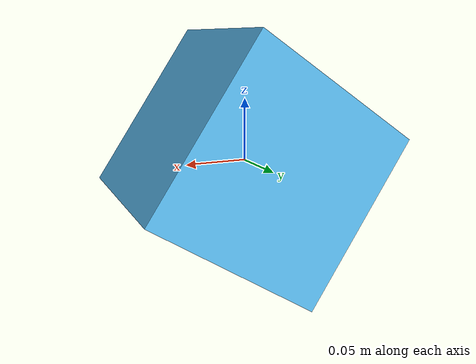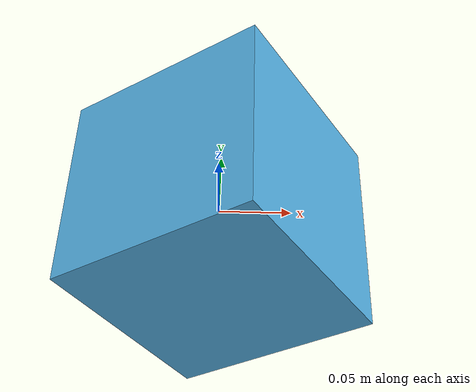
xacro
<robot name="camera5">
    <link name="world"/>
    <joint name="world_joint" type="fixed">
        <origin xyz="0.0 0 0" rpy="0 0.58535 3.14"/>
        <parent link="world"/>
        <child link="cctv5"/>
    </joint>
    <link name="cctv5">
        <visual>
            <origin xyz="0 0 0" rpy="0 0 0"/>
            <geometry>
                <box size="0.15 0.15 0.15"/>
            </geometry>
        </visual>
        <inertial>
            <mass value="1e-5"/>
            <origin xyz="0 0 0" rpy="0 0 0"/>
            <inertia ixx="1e-6" ixy="0" ixz="0" iyy="1e-6" iyz="0" izz="1e-6"/>
        </inertial>
    </link>
    <gazebo reference="cctv5">
        <static>true</static>
        <turnGravityOff>true</turnGravityOff>
        <sensor type="camera" name="cctv5">
            <update_rate>30.0</update_rate>
            <camera name="head">
                <horizontal_fov>1.3962634</horizontal_fov>
                <image>
                    <width>512</width>
                    <height>512</height>
                    <format>R8G8B8</format>
                </image>
                <clip>
                    <near>0.02</near>
                    <far>300</far>
                </clip>
                <noise>
                    <type>gaussian</type>
                    <mean>0.0</mean>
                    <stddev>0.0</stddev>
                </noise>
            </camera>
            <plugin name="camera_controller" filename="libgazebo_ros_camera.so">
                <alwaysOn>true</alwaysOn>
                <updateRate>0.0</updateRate>
                <cameraName>cctv5</cameraName>
                <imageTopicName>/cctv5/image_raw</imageTopicName>
                <cameraInfoTopicName>/cctv5/camera_info</cameraInfoTopicName>
                <frameName>cctv5</frameName>
                <hackBaseline>0.07</hackBaseline>
                <distortionK1>0.0</distortionK1>
                <distortionK2>0.0</distortionK2>
                <distortionK3>0.0</distortionK3>
                <distortionT1>0.0</distortionT1>
                <distortionT2>0.0</distortionT2>
            </plugin>
        </sensor>
    </gazebo>
</robot>
